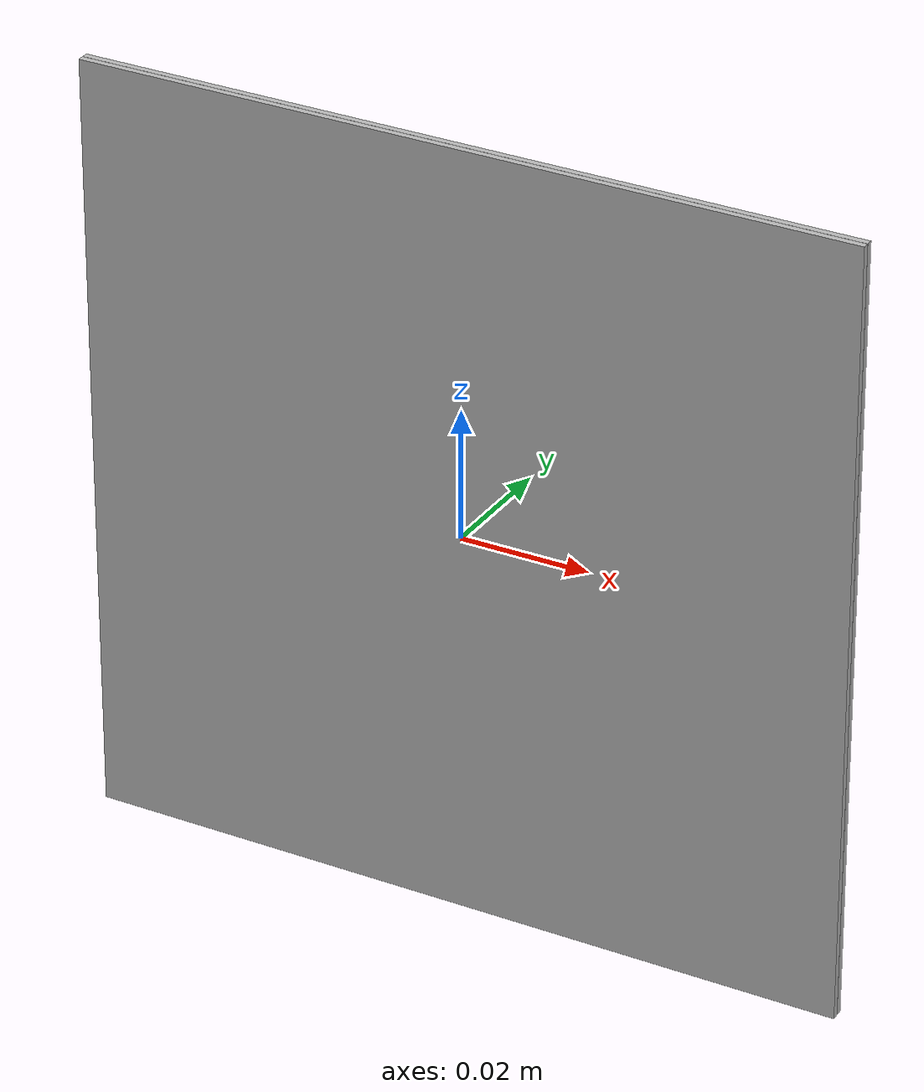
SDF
<?xml version="1.0" ?>
<sdf version="1.6">
  <model name="aruco_box">
    <static>false</static>

    <link name="body">
      <inertial>
        <mass>0.05</mass>
        <inertia>
          <ixx>0.00024</ixx>
          <iyy>0.00048</iyy>
          <izz>0.00024</izz>
        </inertia>
      </inertial>

      <collision name="collision">
        <geometry>
          <box>
            <size>0.12 0.001 0.12</size>
          </box>
        </geometry>
      </collision>

      <visual name="front_visual">
        <pose>0 0.00051 0 0 0 0</pose>
        <geometry>
          <box>
            <size>0.12 0.001 0.12</size>
          </box>
        </geometry>
        <material>
          <script>
            <uri>model://aruco_box/materials/scripts</uri>
            <uri>model://aruco_box/materials/textures</uri>
            <name>aruco_box/aruco_front</name>
          </script>
        </material>
      </visual>

      <visual name="back_visual">
        <pose>0 -0.00051 0 0 3.14159 0</pose>
        <geometry>
          <box>
            <size>0.12 0.001 0.12</size>
          </box>
        </geometry>
        <material>
          <script>
            <uri>model://aruco_box/materials/scripts</uri>
            <uri>model://aruco_box/materials/textures</uri>
            <name>aruco_box/aruco_front</name>
          </script>
        </material>
      </visual>
    </link>
  </model>
</sdf>
